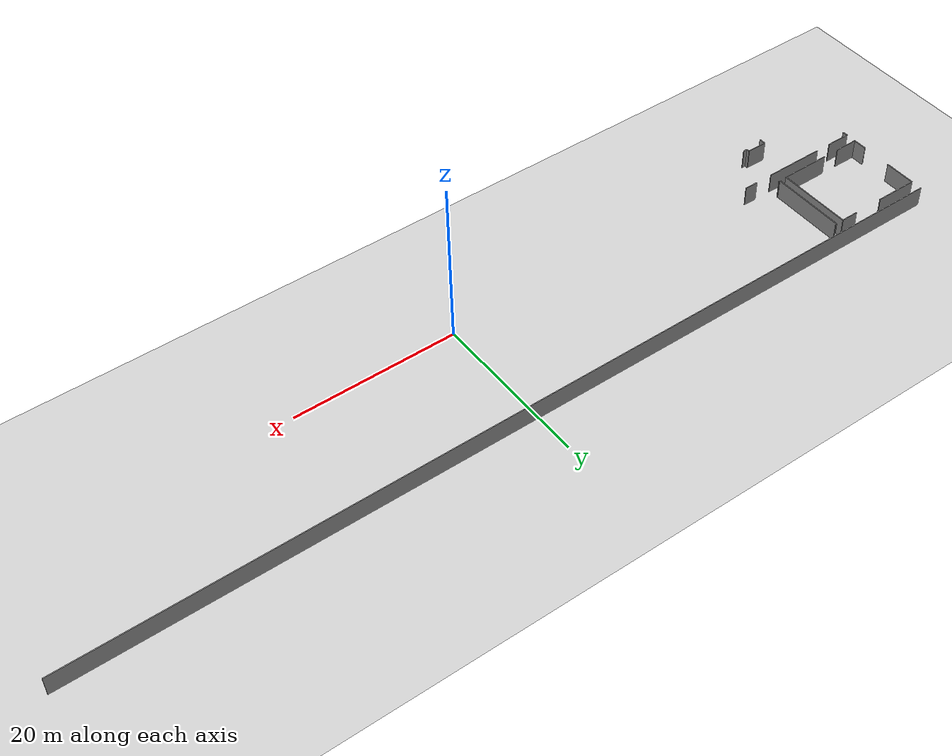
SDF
<sdf version="1.6">
 <world name="default">
  <model name="ground_plane">
   <static>1</static>
   <link name="link">
    <collision name="collision">
     <geometry><plane><normal>0 0 1</normal><size>100 100</size></plane></geometry>
     <surface><friction><ode><mu>100</mu><mu2>50</mu2></ode></friction></surface>
    </collision>
    <visual name="visual">
     <cast_shadows>0</cast_shadows>
     <geometry><plane><normal>0 0 1</normal><size>100 100</size></plane></geometry>
     <material>
      <script><uri>file://media/materials/scripts/gazebo.material</uri><name>Gazebo/Grey</name></script>
     </material>
    </visual>
   </link>
  </model>
  <model name="50056458">
   <static>1</static>
   <link name="Wall_0">
    <collision name="Wall_0_Collision">
     <geometry><box><size>6.05910203529 0.1 2.5</size></box></geometry>
     <pose>3.02955101764 0 1.25 0 0 0</pose>
    </collision>
    <visual name="Wall_0_Visual">
     <pose>3.02955101764 0 1.25 0 0 0</pose>
     <geometry><box><size>6.05910203529 0.1 2.5</size></box></geometry>
     <material>
      <script><uri>file://media/materials/scripts/gazebo.material</uri><name>Gazebo/Grey</name></script>
      <ambient>1 1 1 1</ambient>
     </material>
    </visual>
    <pose>10.9724139683 -10.6930810472 0 0 0 3.14159265359</pose>
   </link>
   <link name="Wall_1">
    <collision name="Wall_1_Collision">
     <geometry><box><size>2.85769944184 0.1 2.5</size></box></geometry>
     <pose>1.42884972092 0 1.25 0 0 0</pose>
    </collision>
    <visual name="Wall_1_Visual">
     <pose>1.42884972092 0 1.25 0 0 0</pose>
     <geometry><box><size>2.85769944184 0.1 2.5</size></box></geometry>
     <material>
      <script><uri>file://media/materials/scripts/gazebo.material</uri><name>Gazebo/Grey</name></script>
      <ambient>1 1 1 1</ambient>
     </material>
    </visual>
    <pose>2.86989590656 -10.6930810472 0 0 0 3.14159265359</pose>
   </link>
   <link name="Wall_2">
    <collision name="Wall_2_Collision">
     <geometry><box><size>1.70631929328 0.1 2.5</size></box></geometry>
     <pose>0.853159646641 0 1.25 0 0 0</pose>
    </collision>
    <visual name="Wall_2_Visual">
     <pose>0.853159646641 0 1.25 0 0 0</pose>
     <geometry><box><size>1.70631929328 0.1 2.5</size></box></geometry>
     <material>
      <script><uri>file://media/materials/scripts/gazebo.material</uri><name>Gazebo/Grey</name></script>
      <ambient>1 1 1 1</ambient>
     </material>
    </visual>
    <pose>0.0121964647192 -10.6930810472 0 0 0 1.57079632679</pose>
   </link>
   <link name="Wall_3">
    <collision name="Wall_3_Collision">
     <geometry><box><size>3.88321885031 0.1 2.5</size></box></geometry>
     <pose>1.94160942516 0 1.25 0 0 0</pose>
    </collision>
    <visual name="Wall_3_Visual">
     <pose>1.94160942516 0 1.25 0 0 0</pose>
     <geometry><box><size>3.88321885031 0.1 2.5</size></box></geometry>
     <material>
      <script><uri>file://media/materials/scripts/gazebo.material</uri><name>Gazebo/Grey</name></script>
      <ambient>1 1 1 1</ambient>
     </material>
    </visual>
    <pose>0.0121964647192 -5.25938661946 0 0 0 1.57079632679</pose>
   </link>
   <link name="Wall_4">
    <collision name="Wall_4_Collision">
     <geometry><box><size>5.13149313525 0.1 2.5</size></box></geometry>
     <pose>2.56574656763 0 1.25 0 0 0</pose>
    </collision>
    <visual name="Wall_4_Visual">
     <pose>2.56574656763 0 1.25 0 0 0</pose>
     <geometry><box><size>5.13149313525 0.1 2.5</size></box></geometry>
     <material>
      <script><uri>file://media/materials/scripts/gazebo.material</uri><name>Gazebo/Grey</name></script>
      <ambient>1 1 1 1</ambient>
     </material>
    </visual>
    <pose>0.0121964647192 -1.37616776915 0 0 0 0.0</pose>
   </link>
   <link name="Wall_5">
    <collision name="Wall_5_Collision">
     <geometry><box><size>2.08712002507 0.1 2.5</size></box></geometry>
     <pose>1.04356001254 0 1.25 0 0 0</pose>
    </collision>
    <visual name="Wall_5_Visual">
     <pose>1.04356001254 0 1.25 0 0 0</pose>
     <geometry><box><size>2.08712002507 0.1 2.5</size></box></geometry>
     <material>
      <script><uri>file://media/materials/scripts/gazebo.material</uri><name>Gazebo/Grey</name></script>
      <ambient>1 1 1 1</ambient>
     </material>
    </visual>
    <pose>8.84938213049 -1.37616776915 0 0 0 0.0</pose>
   </link>
   <link name="Wall_6">
    <collision name="Wall_6_Collision">
     <geometry><box><size>9.3169824884 0.1 2.5</size></box></geometry>
     <pose>4.6584912442 0 1.25 0 0 0</pose>
    </collision>
    <visual name="Wall_6_Visual">
     <pose>4.6584912442 0 1.25 0 0 0</pose>
     <geometry><box><size>9.3169824884 0.1 2.5</size></box></geometry>
     <material>
      <script><uri>file://media/materials/scripts/gazebo.material</uri><name>Gazebo/Grey</name></script>
      <ambient>1 1 1 1</ambient>
     </material>
    </visual>
    <pose>10.9365021556 -1.37616776915 0 0 0 -1.56694187051</pose>
   </link>
   <link name="Wall_8">
    <collision name="Wall_8_Collision">
     <geometry><box><size>0.135516274658 0.1 2.5</size></box></geometry>
     <pose>0.0677581373288 0 1.25 0 0 0</pose>
    </collision>
    <visual name="Wall_8_Visual">
     <pose>0.0677581373288 0 1.25 0 0 0</pose>
     <geometry><box><size>0.135516274658 0.1 2.5</size></box></geometry>
     <material>
      <script><uri>file://media/materials/scripts/gazebo.material</uri><name>Gazebo/Grey</name></script>
      <ambient>1 1 1 1</ambient>
     </material>
    </visual>
    <pose>12.0851719786 -10.6707208619 0 0 0 3.14159265359</pose>
   </link>
   <link name="Wall_9">
    <collision name="Wall_9_Collision">
     <geometry><box><size>9.32250332438 0.1 2.5</size></box></geometry>
     <pose>4.66125166219 0 1.25 0 0 0</pose>
    </collision>
    <visual name="Wall_9_Visual">
     <pose>4.66125166219 0 1.25 0 0 0</pose>
     <geometry><box><size>9.32250332438 0.1 2.5</size></box></geometry>
     <material>
      <script><uri>file://media/materials/scripts/gazebo.material</uri><name>Gazebo/Grey</name></script>
      <ambient>1 1 1 1</ambient>
     </material>
    </visual>
    <pose>11.949655704 -10.6707208619 0 0 0 1.57079632679</pose>
   </link>
   <link name="Wall_10">
    <collision name="Wall_10_Collision">
     <geometry><box><size>0.136532646718 0.1 2.5</size></box></geometry>
     <pose>0.0682663233588 0 1.25 0 0 0</pose>
    </collision>
    <visual name="Wall_10_Visual">
     <pose>0.0682663233588 0 1.25 0 0 0</pose>
     <geometry><box><size>0.136532646718 0.1 2.5</size></box></geometry>
     <material>
      <script><uri>file://media/materials/scripts/gazebo.material</uri><name>Gazebo/Grey</name></script>
      <ambient>1 1 1 1</ambient>
     </material>
    </visual>
    <pose>11.949655704 -1.3482175375 0 0 0 0.0</pose>
   </link>
   <link name="Wall_54">
    <collision name="Wall_54_Collision">
     <geometry><box><size>0.499546867457 0.1 2.5</size></box></geometry>
     <pose>0.249773433728 0 1.25 0 0 0</pose>
    </collision>
    <visual name="Wall_54_Visual">
     <pose>0.249773433728 0 1.25 0 0 0</pose>
     <geometry><box><size>0.499546867457 0.1 2.5</size></box></geometry>
     <material>
      <script><uri>file://media/materials/scripts/gazebo.material</uri><name>Gazebo/Grey</name></script>
      <ambient>1 1 1 1</ambient>
     </material>
    </visual>
    <pose>11.7091143164 -17.1458578604 0 0 0 3.14159265359</pose>
   </link>
   <link name="Wall_55">
    <collision name="Wall_55_Collision">
     <geometry><box><size>0.384188638654 0.1 2.5</size></box></geometry>
     <pose>0.192094319327 0 1.25 0 0 0</pose>
    </collision>
    <visual name="Wall_55_Visual">
     <pose>0.192094319327 0 1.25 0 0 0</pose>
     <geometry><box><size>0.384188638654 0.1 2.5</size></box></geometry>
     <material>
      <script><uri>file://media/materials/scripts/gazebo.material</uri><name>Gazebo/Grey</name></script>
      <ambient>1 1 1 1</ambient>
     </material>
    </visual>
    <pose>11.209567449 -17.1458578604 0 0 0 1.57079632679</pose>
   </link>
   <link name="Wall_56">
    <collision name="Wall_56_Collision">
     <geometry><box><size>2.44640754826 0.1 2.5</size></box></geometry>
     <pose>1.22320377413 0 1.25 0 0 0</pose>
    </collision>
    <visual name="Wall_56_Visual">
     <pose>1.22320377413 0 1.25 0 0 0</pose>
     <geometry><box><size>2.44640754826 0.1 2.5</size></box></geometry>
     <material>
      <script><uri>file://media/materials/scripts/gazebo.material</uri><name>Gazebo/Grey</name></script>
      <ambient>1 1 1 1</ambient>
     </material>
    </visual>
    <pose>11.209567449 -16.7616692217 0 0 0 3.14159265359</pose>
   </link>
   <link name="Wall_57">
    <collision name="Wall_57_Collision">
     <geometry><box><size>0.797682671703 0.1 2.5</size></box></geometry>
     <pose>0.398841335852 0 1.25 0 0 0</pose>
    </collision>
    <visual name="Wall_57_Visual">
     <pose>0.398841335852 0 1.25 0 0 0</pose>
     <geometry><box><size>0.797682671703 0.1 2.5</size></box></geometry>
     <material>
      <script><uri>file://media/materials/scripts/gazebo.material</uri><name>Gazebo/Grey</name></script>
      <ambient>1 1 1 1</ambient>
     </material>
    </visual>
    <pose>8.76315990073 -16.7616692217 0 0 0 -1.57079632679</pose>
   </link>
   <link name="Wall_61">
    <collision name="Wall_61_Collision">
     <geometry><box><size>0.659117280866 0.1 2.5</size></box></geometry>
     <pose>0.329558640433 0 1.25 0 0 0</pose>
    </collision>
    <visual name="Wall_61_Visual">
     <pose>0.329558640433 0 1.25 0 0 0</pose>
     <geometry><box><size>0.659117280866 0.1 2.5</size></box></geometry>
     <material>
      <script><uri>file://media/materials/scripts/gazebo.material</uri><name>Gazebo/Grey</name></script>
      <ambient>1 1 1 1</ambient>
     </material>
    </visual>
    <pose>0.009994325256 -12.6616243319 0 0 0 1.57079632679</pose>
   </link>
   <link name="Wall_62">
    <collision name="Wall_62_Collision">
     <geometry><box><size>2.92190027696 0.1 2.5</size></box></geometry>
     <pose>1.46095013848 0 1.25 0 0 0</pose>
    </collision>
    <visual name="Wall_62_Visual">
     <pose>1.46095013848 0 1.25 0 0 0</pose>
     <geometry><box><size>2.92190027696 0.1 2.5</size></box></geometry>
     <material>
      <script><uri>file://media/materials/scripts/gazebo.material</uri><name>Gazebo/Grey</name></script>
      <ambient>1 1 1 1</ambient>
     </material>
    </visual>
    <pose>0.009994325256 -12.0025070511 0 0 0 0.0</pose>
   </link>
   <link name="Wall_63">
    <collision name="Wall_63_Collision">
     <geometry><box><size>7.34769241194 0.1 2.5</size></box></geometry>
     <pose>3.67384620597 0 1.25 0 0 0</pose>
    </collision>
    <visual name="Wall_63_Visual">
     <pose>3.67384620597 0 1.25 0 0 0</pose>
     <geometry><box><size>7.34769241194 0.1 2.5</size></box></geometry>
     <material>
      <script><uri>file://media/materials/scripts/gazebo.material</uri><name>Gazebo/Grey</name></script>
      <ambient>1 1 1 1</ambient>
     </material>
    </visual>
    <pose>4.80184979715 -12.0025070511 0 0 0 0.0</pose>
   </link>
   <link name="Wall_64">
    <collision name="Wall_64_Collision">
     <geometry><box><size>1.65956617853 0.1 2.5</size></box></geometry>
     <pose>0.829783089263 0 1.25 0 0 0</pose>
    </collision>
    <visual name="Wall_64_Visual">
     <pose>0.829783089263 0 1.25 0 0 0</pose>
     <geometry><box><size>1.65956617853 0.1 2.5</size></box></geometry>
     <material>
      <script><uri>file://media/materials/scripts/gazebo.material</uri><name>Gazebo/Grey</name></script>
      <ambient>1 1 1 1</ambient>
     </material>
    </visual>
    <pose>14.2915463254 -12.0025070511 0 0 0 0.0</pose>
   </link>
   <link name="Wall_296">
    <collision name="Wall_296_Collision">
     <geometry><box><size>109.55948741 0.1 2.5</size></box></geometry>
     <pose>54.7797437048 0 1.25 0 0 0</pose>
    </collision>
    <visual name="Wall_296_Visual">
     <pose>54.7797437048 0 1.25 0 0 0</pose>
     <geometry><box><size>109.55948741 0.1 2.5</size></box></geometry>
     <material>
      <script><uri>file://media/materials/scripts/gazebo.material</uri><name>Gazebo/Grey</name></script>
      <ambient>1 1 1 1</ambient>
     </material>
    </visual>
   </link>
   <pose>-54.75 15.0009033007 0 0 0 0</pose>
  </model>
 </world>
</sdf>
